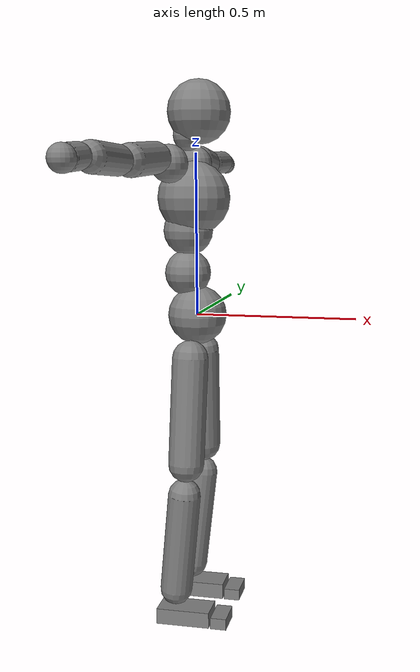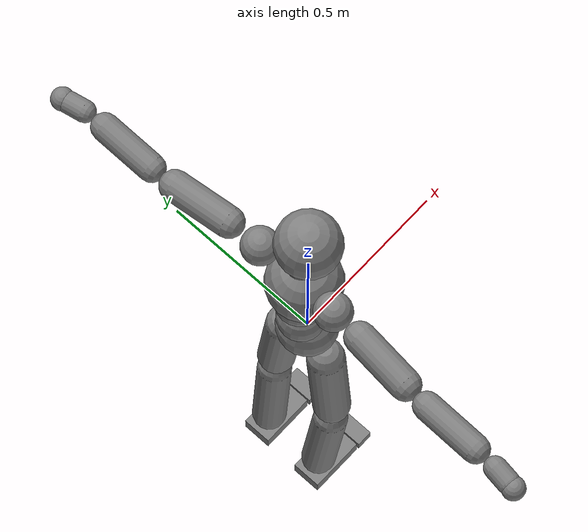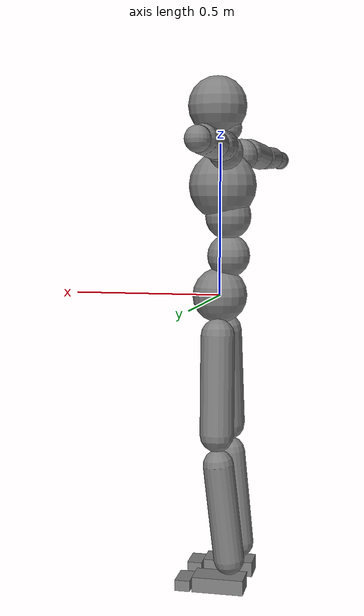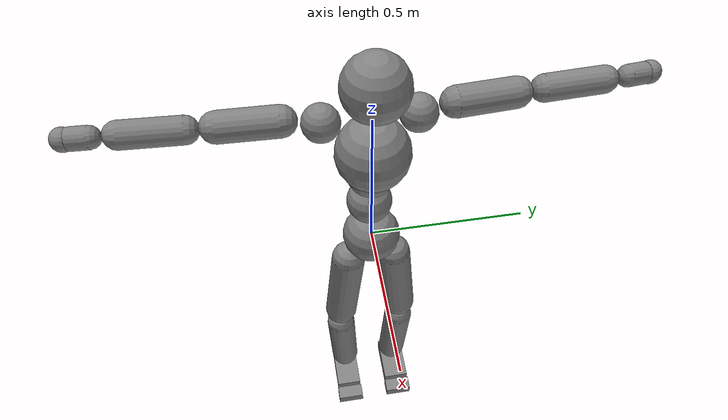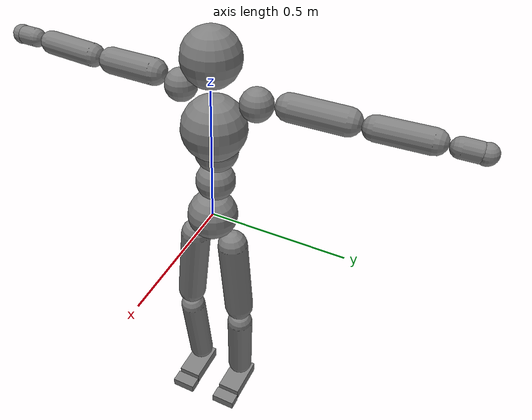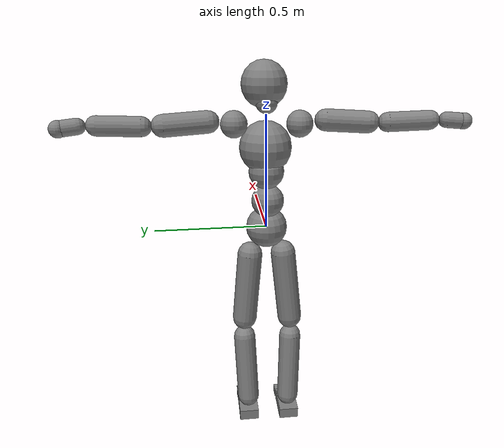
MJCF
<mujoco model="smpl">
  <compiler angle="radian" />
  <default>
    <motor ctrlrange="-1 1" ctrllimited="true" />
    <geom condim="1" friction="1.0 0.05 0.05" solimp=".9 .99 .003" solref=".015 1" />
    <joint limited="true" solimplimit="0 .99 .01" />
    <site size=".04" group="3" />
    <default class="force-torque">
      <site type="box" size=".01 .01 .02" rgba="1 0 0 1" />
    </default>
    <default class="touch">
      <site type="capsule" rgba="0 0 1 .3" />
    </default>
  </default>
  <worldbody>
    <body name="Pelvis" pos="0.000000 0.000000 0.000000">
      <freejoint name="Pelvis" />
      <geom type="sphere" contype="1" conaffinity="1" density="1851.773707" size="0.092340" pos="0.000000 0.000000 0.000000" />
      <body name="L_Hip" pos="-0.007344 0.075060 -0.098712">
        <joint name="L_Hip_x" type="hinge" pos="0 0 0" axis="1 0 0" actuatorfrcrange="-300 300" stiffness="500" damping="50" armature="0.02" range="-0.5236 1.5708" />
        <joint name="L_Hip_y" type="hinge" pos="0 0 0" axis="0 1 0" actuatorfrcrange="-300 300" stiffness="500" damping="50" armature="0.02" range="-2.4435 1.0472" />
        <joint name="L_Hip_z" type="hinge" pos="0 0 0" axis="0 0 1" actuatorfrcrange="-300 300" stiffness="500" damping="50" armature="0.02" range="-0.6109 1.0472" />
        <geom type="capsule" contype="1" conaffinity="1" density="1332.294009" fromto="-0.000340 0.002593 -0.028365 -0.004277 0.032599 -0.356590" size="0.056430" />
        <body name="L_Knee" pos="-0.004860 0.037044 -0.405216">
          <joint name="L_Knee_x" type="hinge" pos="0 0 0" axis="1 0 0" actuatorfrcrange="-200 200" stiffness="500" damping="50" armature="0.02" range="-0.5236 0.5236" />
          <joint name="L_Knee_y" type="hinge" pos="0 0 0" axis="0 1 0" actuatorfrcrange="-200 200" stiffness="500" damping="50" armature="0.02" range="0 2.7925" />
          <joint name="L_Knee_z" type="hinge" pos="0 0 0" axis="0 0 1" actuatorfrcrange="-200 200" stiffness="500" damping="50" armature="0.02" range="-0.5236 0.5236" />
          <geom type="capsule" contype="1" conaffinity="1" density="1109.455027" fromto="-0.005664 -0.001763 -0.051581 -0.041532 -0.012925 -0.378259" size="0.051300" />
          <body name="L_Ankle" pos="-0.047196 -0.014688 -0.429840">
            <joint name="L_Ankle_x" type="hinge" pos="0 0 0" axis="1 0 0" actuatorfrcrange="-100 100" stiffness="400" damping="40" armature="0.02" range="-0.5236 0.5236" />
            <joint name="L_Ankle_y" type="hinge" pos="0 0 0" axis="0 1 0" actuatorfrcrange="-100 100" stiffness="400" damping="40" armature="0.02" range="-0.9599 0.9599" />
            <joint name="L_Ankle_z" type="hinge" pos="0 0 0" axis="0 0 1" actuatorfrcrange="-100 100" stiffness="400" damping="40" armature="0.02" range="-0.6981 0.6981" />
            <geom type="box" contype="1" conaffinity="1" density="879.592511" pos="0.037368 0.002592 -0.030132" size="0.086400 0.046170 0.025650" quat="1.0000 0.0000 0.0000 0.0000" />
            <body name="L_Toe" pos="0.128844 0.013392 -0.027864">
              <joint name="L_Toe_x" type="hinge" pos="0 0 0" axis="1 0 0" actuatorfrcrange="-75 75" stiffness="200" damping="20" armature="0.02" range="-0.5236 0.5236" />
              <joint name="L_Toe_y" type="hinge" pos="0 0 0" axis="0 1 0" actuatorfrcrange="-75 75" stiffness="200" damping="20" armature="0.02" range="-1.0472 1.0472" />
              <joint name="L_Toe_z" type="hinge" pos="0 0 0" axis="0 0 1" actuatorfrcrange="-75 75" stiffness="200" damping="20" armature="0.02" range="-0.5236 0.5236" />
              <geom type="box" contype="1" conaffinity="1" density="879.592511" pos="0.027216 -0.010800 -0.008640" size="0.025650 0.048600 0.018468" quat="1.0000 0.0000 0.0000 0.0000" />
            </body>
          </body>
        </body>
      </body>
      <body name="R_Hip" pos="-0.004644 -0.073116 -0.097740">
        <joint name="R_Hip_x" type="hinge" pos="0 0 0" axis="1 0 0" actuatorfrcrange="-300 300" stiffness="500" damping="50" armature="0.02" range="-1.5708 0.5236" />
        <joint name="R_Hip_y" type="hinge" pos="0 0 0" axis="0 1 0" actuatorfrcrange="-300 300" stiffness="500" damping="50" armature="0.02" range="-2.4435 1.0472" />
        <joint name="R_Hip_z" type="hinge" pos="0 0 0" axis="0 0 1" actuatorfrcrange="-300 300" stiffness="500" damping="50" armature="0.02" range="-1.0472 0.6109" />
        <geom type="capsule" contype="1" conaffinity="1" density="1332.079468" fromto="-0.000673 -0.002895 -0.028925 -0.008459 -0.036400 -0.363623" size="0.056430" />
        <body name="R_Knee" pos="-0.009612 -0.041364 -0.413208">
          <joint name="R_Knee_x" type="hinge" pos="0 0 0" axis="1 0 0" actuatorfrcrange="-200 200" stiffness="500" damping="50" armature="0.02" range="-0.5236 0.5236" />
          <joint name="R_Knee_y" type="hinge" pos="0 0 0" axis="0 1 0" actuatorfrcrange="-200 200" stiffness="500" damping="50" armature="0.02" range="0 2.7925" />
          <joint name="R_Knee_z" type="hinge" pos="0 0 0" axis="0 0 1" actuatorfrcrange="-200 200" stiffness="500" damping="50" armature="0.02" range="-0.5236 0.5236" />
          <geom type="capsule" contype="1" conaffinity="1" density="1109.448281" fromto="-0.005482 0.002048 -0.051633 -0.040202 0.015016 -0.378639" size="0.051300" />
          <body name="R_Ankle" pos="-0.045684 0.017064 -0.430272">
            <joint name="R_Ankle_x" type="hinge" pos="0 0 0" axis="1 0 0" actuatorfrcrange="-100 100" stiffness="400" damping="40" armature="0.02" range="-0.5236 0.5236" />
            <joint name="R_Ankle_y" type="hinge" pos="0 0 0" axis="0 1 0" actuatorfrcrange="-100 100" stiffness="400" damping="40" armature="0.02" range="-0.9599 0.9599" />
            <joint name="R_Ankle_z" type="hinge" pos="0 0 0" axis="0 0 1" actuatorfrcrange="-100 100" stiffness="400" damping="40" armature="0.02" range="-0.6981 0.6981" />
            <geom type="box" contype="1" conaffinity="1" density="879.592511" pos="0.037368 -0.002592 -0.030132" size="0.086400 0.046170 0.025650" quat="1.0000 0.0000 0.0000 0.0000" />
            <body name="R_Toe" pos="0.128844 -0.013392 -0.027864">
              <joint name="R_Toe_x" type="hinge" pos="0 0 0" axis="1 0 0" actuatorfrcrange="-75 75" stiffness="200" damping="20" armature="0.02" range="-0.5236 0.5236" />
              <joint name="R_Toe_y" type="hinge" pos="0 0 0" axis="0 1 0" actuatorfrcrange="-75 75" stiffness="200" damping="20" armature="0.02" range="-1.0472 1.0472" />
              <joint name="R_Toe_z" type="hinge" pos="0 0 0" axis="0 0 1" actuatorfrcrange="-75 75" stiffness="200" damping="20" armature="0.02" range="-0.5236 0.5236" />
              <geom type="box" contype="1" conaffinity="1" density="879.592511" pos="0.027216 0.010800 -0.008640" size="0.025650 0.048600 0.018468" quat="1.0000 0.0000 0.0000 0.0000" />
            </body>
          </body>
        </body>
      </body>
      <body name="Torso" pos="-0.028836 -0.002700 0.117720">
        <joint name="Torso_x" type="hinge" pos="0 0 0" axis="1 0 0" actuatorfrcrange="-300 300" stiffness="1000" damping="100" armature="0.02" range="-1.0472 1.0472" />
        <joint name="Torso_y" type="hinge" pos="0 0 0" axis="0 1 0" actuatorfrcrange="-300 300" stiffness="1000" damping="100" armature="0.02" range="-1.0472 1.5708" />
        <joint name="Torso_z" type="hinge" pos="0 0 0" axis="0 0 1" actuatorfrcrange="-300 300" stiffness="1000" damping="100" armature="0.02" range="-0.8727 0.8727" />
        <geom type="sphere" contype="1" conaffinity="1" density="1851.773707" size="0.071820" pos="0.000119 0.000594 0.014602" />
        <body name="Spine" pos="0.001188 0.005940 0.146016">
          <joint name="Spine_x" type="hinge" pos="0 0 0" axis="1 0 0" actuatorfrcrange="-200 200" stiffness="1000" damping="100" armature="0.02" range="-1.0472 1.0472" />
          <joint name="Spine_y" type="hinge" pos="0 0 0" axis="0 1 0" actuatorfrcrange="-200 200" stiffness="1000" damping="100" armature="0.02" range="-1.0472 1.5708" />
          <joint name="Spine_z" type="hinge" pos="0 0 0" axis="0 0 1" actuatorfrcrange="-200 200" stiffness="1000" damping="100" armature="0.02" range="-0.8727 0.8727" />
          <geom type="sphere" contype="1" conaffinity="1" density="1851.773707" size="0.076950" pos="0.000000 0.000000 0.000000" />
          <body name="Chest" pos="0.027432 0.001620 0.057132">
            <joint name="Chest_x" type="hinge" pos="0 0 0" axis="1 0 0" actuatorfrcrange="-150 150" stiffness="1000" damping="100" armature="0.02" range="-1.0472 1.0472" />
            <joint name="Chest_y" type="hinge" pos="0 0 0" axis="0 1 0" actuatorfrcrange="-150 150" stiffness="1000" damping="100" armature="0.02" range="-1.0472 1.5708" />
            <joint name="Chest_z" type="hinge" pos="0 0 0" axis="0 0 1" actuatorfrcrange="-150 150" stiffness="1000" damping="100" armature="0.02" range="-0.8727 0.8727" />
            <geom type="sphere" contype="1" conaffinity="1" density="1851.773707" size="0.112860" pos="-0.008640 0.000000 0.043200" />
            <body name="Neck" pos="-0.046332 -0.003024 0.231012">
              <joint name="Neck_x" type="hinge" pos="0 0 0" axis="1 0 0" actuatorfrcrange="-75 75" stiffness="500" damping="50" armature="0.02" range="-0.8727 0.8727" />
              <joint name="Neck_y" type="hinge" pos="0 0 0" axis="0 1 0" actuatorfrcrange="-75 75" stiffness="500" damping="50" armature="0.02" range="-0.6981 1.0472" />
              <joint name="Neck_z" type="hinge" pos="0 0 0" axis="0 0 1" actuatorfrcrange="-75 75" stiffness="500" damping="50" armature="0.02" range="-0.7854 0.7854" />
              <geom type="sphere" contype="1" conaffinity="1" density="925.886854" size="0.046170" pos="0.021600 0.000000 0.000000" />
              <body name="Head" pos="0.055404 0.005616 0.070200">
                <joint name="Head_x" type="hinge" pos="0 0 0" axis="1 0 0" actuatorfrcrange="-25 25" stiffness="200" damping="20" armature="0.02" range="-0.8727 0.8727" />
                <joint name="Head_y" type="hinge" pos="0 0 0" axis="0 1 0" actuatorfrcrange="-25 25" stiffness="200" damping="20" armature="0.02" range="-0.6981 1.0472" />
                <joint name="Head_z" type="hinge" pos="0 0 0" axis="0 0 1" actuatorfrcrange="-25 25" stiffness="200" damping="20" armature="0.02" range="-0.7854 0.7854" />
                <geom type="sphere" contype="1" conaffinity="1" density="925.886854" size="0.097470" pos="0.000000 0.000000 0.000000" />
              </body>
            </body>
            <body name="L_Thorax" pos="-0.036828 0.085104 0.131436">
              <joint name="L_Thorax_x" type="hinge" pos="0 0 0" axis="1 0 0" actuatorfrcrange="-200 200" stiffness="500" damping="50" armature="0.02" range="-0.6981 0.5236" />
              <joint name="L_Thorax_y" type="hinge" pos="0 0 0" axis="0 1 0" actuatorfrcrange="-200 200" stiffness="500" damping="50" armature="0.02" range="-0.5236 0.5236" />
              <joint name="L_Thorax_z" type="hinge" pos="0 0 0" axis="0 0 1" actuatorfrcrange="-200 200" stiffness="500" damping="50" armature="0.02" range="-0.5236 0.5236" />
              <geom type="sphere" contype="1" conaffinity="1" density="925.886854" size="0.056430" pos="-0.004806 0.049140 0.016470" />
              <body name="L_Shoulder" pos="-0.009612 0.098280 0.032940">
                <joint name="L_Shoulder_x" type="hinge" pos="0 0 0" axis="1 0 0" actuatorfrcrange="-150 150" stiffness="400" damping="40" armature="0.02" range="-2.3562 1.5708" />
                <joint name="L_Shoulder_y" type="hinge" pos="0 0 0" axis="0 1 0" actuatorfrcrange="-150 150" stiffness="400" damping="40" armature="0.02" range="-1.5708 1.5708" />
                <joint name="L_Shoulder_z" type="hinge" pos="0 0 0" axis="0 0 1" actuatorfrcrange="-150 150" stiffness="400" damping="40" armature="0.02" range="-2.7925 1.0472" />
                <geom type="capsule" contype="1" conaffinity="1" density="891.222821" fromto="-0.005940 0.056074 -0.002765 -0.025245 0.238313 -0.011750" size="0.046170" />
                <body name="L_Elbow" pos="-0.029700 0.280368 -0.013824">
                  <joint name="L_Elbow_x" type="hinge" pos="0 0 0" axis="1 0 0" actuatorfrcrange="-100 100" stiffness="300" damping="30" armature="0.02" range="-0.5236 0.5236" />
                  <joint name="L_Elbow_y" type="hinge" pos="0 0 0" axis="0 1 0" actuatorfrcrange="-100 100" stiffness="300" damping="30" armature="0.02" range="-0.5236 0.5236" />
                  <joint name="L_Elbow_z" type="hinge" pos="0 0 0" axis="0 0 1" actuatorfrcrange="-100 100" stiffness="300" damping="30" armature="0.02" range="-2.7925 0" />
                  <geom type="capsule" contype="1" conaffinity="1" density="890.615292" fromto="-0.000194 0.040370 0.001458 -0.000972 0.215352 0.007776" size="0.041040" />
                  <body name="L_Wrist" pos="-0.001296 0.269136 0.009720">
                    <joint name="L_Wrist_x" type="hinge" pos="0 0 0" axis="1 0 0" actuatorfrcrange="-75 75" stiffness="200" damping="20" armature="0.02" range="-1.5708 1.5708" />
                    <joint name="L_Wrist_y" type="hinge" pos="0 0 0" axis="0 1 0" actuatorfrcrange="-75 75" stiffness="200" damping="20" armature="0.02" range="-1.5708 1.5708" />
                    <joint name="L_Wrist_z" type="hinge" pos="0 0 0" axis="0 0 1" actuatorfrcrange="-75 75" stiffness="200" damping="20" armature="0.02" range="-1.0472 1.0472" />
                    <geom type="capsule" contype="1" conaffinity="1" density="899.925205" fromto="-0.003240 0.018144 -0.001728 -0.012960 0.072576 -0.007020" size="0.032627" />
                    <body name="L_Hand" pos="-0.016092 0.090720 -0.008856">
                      <joint name="L_Hand_x" type="hinge" pos="0 0 0" axis="1 0 0" actuatorfrcrange="-50 50" stiffness="100" damping="10" armature="0.02" range="-1.5708 1.5708" />
                      <joint name="L_Hand_y" type="hinge" pos="0 0 0" axis="0 1 0" actuatorfrcrange="-50 50" stiffness="100" damping="10" armature="0.02" range="-1.5708 1.5708" />
                      <joint name="L_Hand_z" type="hinge" pos="0 0 0" axis="0 0 1" actuatorfrcrange="-50 50" stiffness="100" damping="10" armature="0.02" range="-1.5708 1.5708" />
                      <geom type="sphere" contype="1" conaffinity="1" density="925.886854" size="0.034576" pos="0.000000 0.000000 0.000000" />
                    </body>
                  </body>
                </body>
              </body>
            </body>
            <body name="R_Thorax" pos="-0.041688 -0.088344 0.128304">
              <joint name="R_Thorax_x" type="hinge" pos="0 0 0" axis="1 0 0" actuatorfrcrange="-200 200" stiffness="500" damping="50" armature="0.02" range="-0.5236 0.6981" />
              <joint name="R_Thorax_y" type="hinge" pos="0 0 0" axis="0 1 0" actuatorfrcrange="-200 200" stiffness="500" damping="50" armature="0.02" range="-0.5236 0.5236" />
              <joint name="R_Thorax_z" type="hinge" pos="0 0 0" axis="0 0 1" actuatorfrcrange="-200 200" stiffness="500" damping="50" armature="0.02" range="-0.5236 0.5236" />
              <geom type="sphere" contype="1" conaffinity="1" density="925.886854" size="0.056430" pos="-0.004914 -0.051840 0.017604" />
              <body name="R_Shoulder" pos="-0.009828 -0.103680 0.035208">
                <joint name="R_Shoulder_x" type="hinge" pos="0 0 0" axis="1 0 0" actuatorfrcrange="-150 150" stiffness="400" damping="40" armature="0.02" range="-1.5708 2.3562" />
                <joint name="R_Shoulder_y" type="hinge" pos="0 0 0" axis="0 1 0" actuatorfrcrange="-150 150" stiffness="400" damping="40" armature="0.02" range="-1.5708 1.5708" />
                <joint name="R_Shoulder_z" type="hinge" pos="0 0 0" axis="0 0 1" actuatorfrcrange="-150 150" stiffness="400" damping="40" armature="0.02" range="-1.0472 2.7925" />
                <geom type="capsule" contype="1" conaffinity="1" density="891.440669" fromto="-0.004622 -0.054799 -0.002873 -0.019645 -0.232897 -0.012209" size="0.046170" />
                <body name="R_Elbow" pos="-0.023112 -0.273996 -0.014364">
                  <joint name="R_Elbow_x" type="hinge" pos="0 0 0" axis="1 0 0" actuatorfrcrange="-100 100" stiffness="300" damping="30" armature="0.02" range="-0.5236 0.5236" />
                  <joint name="R_Elbow_y" type="hinge" pos="0 0 0" axis="0 1 0" actuatorfrcrange="-100 100" stiffness="300" damping="30" armature="0.02" range="-0.5236 0.5236" />
                  <joint name="R_Elbow_z" type="hinge" pos="0 0 0" axis="0 0 1" actuatorfrcrange="-100 100" stiffness="300" damping="30" armature="0.02" range="0 2.7925" />
                  <geom type="capsule" contype="1" conaffinity="1" density="890.415151" fromto="-0.000907 -0.041359 0.001264 -0.004838 -0.220579 0.006739" size="0.041040" />
                  <body name="R_Wrist" pos="-0.006048 -0.275724 0.008424">
                    <joint name="R_Wrist_x" type="hinge" pos="0 0 0" axis="1 0 0" actuatorfrcrange="-75 75" stiffness="200" damping="20" armature="0.02" range="-1.5708 1.5708" />
                    <joint name="R_Wrist_y" type="hinge" pos="0 0 0" axis="0 1 0" actuatorfrcrange="-75 75" stiffness="200" damping="20" armature="0.02" range="-1.5708 1.5708" />
                    <joint name="R_Wrist_z" type="hinge" pos="0 0 0" axis="0 0 1" actuatorfrcrange="-75 75" stiffness="200" damping="20" armature="0.02" range="-1.0472 1.0472" />
                    <geom type="capsule" contype="1" conaffinity="1" density="900.235795" fromto="-0.002268 -0.018252 -0.001296 -0.008964 -0.073116 -0.005292" size="0.033448" />
                    <body name="R_Hand" pos="-0.011124 -0.091368 -0.006588">
                      <joint name="R_Hand_x" type="hinge" pos="0 0 0" axis="1 0 0" actuatorfrcrange="-50 50" stiffness="100" damping="10" armature="0.02" range="-1.5708 1.5708" />
                      <joint name="R_Hand_y" type="hinge" pos="0 0 0" axis="0 1 0" actuatorfrcrange="-50 50" stiffness="100" damping="10" armature="0.02" range="-1.5708 1.5708" />
                      <joint name="R_Hand_z" type="hinge" pos="0 0 0" axis="0 0 1" actuatorfrcrange="-50 50" stiffness="100" damping="10" armature="0.02" range="-1.5708 1.5708" />
                      <geom type="sphere" contype="1" conaffinity="1" density="925.886854" size="0.034884" pos="0.000000 0.000000 0.000000" />
                    </body>
                  </body>
                </body>
              </body>
            </body>
          </body>
        </body>
      </body>
    </body>
  </worldbody>
  <actuator>
    <motor name="L_Hip_x" joint="L_Hip_x" gear="300" />
    <motor name="L_Hip_y" joint="L_Hip_y" gear="300" />
    <motor name="L_Hip_z" joint="L_Hip_z" gear="300" />
    <motor name="L_Knee_x" joint="L_Knee_x" gear="200" />
    <motor name="L_Knee_y" joint="L_Knee_y" gear="200" />
    <motor name="L_Knee_z" joint="L_Knee_z" gear="200" />
    <motor name="L_Ankle_x" joint="L_Ankle_x" gear="100" />
    <motor name="L_Ankle_y" joint="L_Ankle_y" gear="100" />
    <motor name="L_Ankle_z" joint="L_Ankle_z" gear="100" />
    <motor name="L_Toe_x" joint="L_Toe_x" gear="75" />
    <motor name="L_Toe_y" joint="L_Toe_y" gear="75" />
    <motor name="L_Toe_z" joint="L_Toe_z" gear="75" />
    <motor name="R_Hip_x" joint="R_Hip_x" gear="300" />
    <motor name="R_Hip_y" joint="R_Hip_y" gear="300" />
    <motor name="R_Hip_z" joint="R_Hip_z" gear="300" />
    <motor name="R_Knee_x" joint="R_Knee_x" gear="200" />
    <motor name="R_Knee_y" joint="R_Knee_y" gear="200" />
    <motor name="R_Knee_z" joint="R_Knee_z" gear="200" />
    <motor name="R_Ankle_x" joint="R_Ankle_x" gear="100" />
    <motor name="R_Ankle_y" joint="R_Ankle_y" gear="100" />
    <motor name="R_Ankle_z" joint="R_Ankle_z" gear="100" />
    <motor name="R_Toe_x" joint="R_Toe_x" gear="75" />
    <motor name="R_Toe_y" joint="R_Toe_y" gear="75" />
    <motor name="R_Toe_z" joint="R_Toe_z" gear="75" />
    <motor name="Torso_x" joint="Torso_x" gear="300" />
    <motor name="Torso_y" joint="Torso_y" gear="300" />
    <motor name="Torso_z" joint="Torso_z" gear="300" />
    <motor name="Spine_x" joint="Spine_x" gear="200" />
    <motor name="Spine_y" joint="Spine_y" gear="200" />
    <motor name="Spine_z" joint="Spine_z" gear="200" />
    <motor name="Chest_x" joint="Chest_x" gear="150" />
    <motor name="Chest_y" joint="Chest_y" gear="150" />
    <motor name="Chest_z" joint="Chest_z" gear="150" />
    <motor name="Neck_x" joint="Neck_x" gear="75" />
    <motor name="Neck_y" joint="Neck_y" gear="75" />
    <motor name="Neck_z" joint="Neck_z" gear="75" />
    <motor name="Head_x" joint="Head_x" gear="25" />
    <motor name="Head_y" joint="Head_y" gear="25" />
    <motor name="Head_z" joint="Head_z" gear="25" />
    <motor name="L_Thorax_x" joint="L_Thorax_x" gear="200" />
    <motor name="L_Thorax_y" joint="L_Thorax_y" gear="200" />
    <motor name="L_Thorax_z" joint="L_Thorax_z" gear="200" />
    <motor name="L_Shoulder_x" joint="L_Shoulder_x" gear="150" />
    <motor name="L_Shoulder_y" joint="L_Shoulder_y" gear="150" />
    <motor name="L_Shoulder_z" joint="L_Shoulder_z" gear="150" />
    <motor name="L_Elbow_x" joint="L_Elbow_x" gear="100" />
    <motor name="L_Elbow_y" joint="L_Elbow_y" gear="100" />
    <motor name="L_Elbow_z" joint="L_Elbow_z" gear="100" />
    <motor name="L_Wrist_x" joint="L_Wrist_x" gear="75" />
    <motor name="L_Wrist_y" joint="L_Wrist_y" gear="75" />
    <motor name="L_Wrist_z" joint="L_Wrist_z" gear="75" />
    <motor name="L_Hand_x" joint="L_Hand_x" gear="50" />
    <motor name="L_Hand_y" joint="L_Hand_y" gear="50" />
    <motor name="L_Hand_z" joint="L_Hand_z" gear="50" />
    <motor name="R_Thorax_x" joint="R_Thorax_x" gear="200" />
    <motor name="R_Thorax_y" joint="R_Thorax_y" gear="200" />
    <motor name="R_Thorax_z" joint="R_Thorax_z" gear="200" />
    <motor name="R_Shoulder_x" joint="R_Shoulder_x" gear="150" />
    <motor name="R_Shoulder_y" joint="R_Shoulder_y" gear="150" />
    <motor name="R_Shoulder_z" joint="R_Shoulder_z" gear="150" />
    <motor name="R_Elbow_x" joint="R_Elbow_x" gear="100" />
    <motor name="R_Elbow_y" joint="R_Elbow_y" gear="100" />
    <motor name="R_Elbow_z" joint="R_Elbow_z" gear="100" />
    <motor name="R_Wrist_x" joint="R_Wrist_x" gear="75" />
    <motor name="R_Wrist_y" joint="R_Wrist_y" gear="75" />
    <motor name="R_Wrist_z" joint="R_Wrist_z" gear="75" />
    <motor name="R_Hand_x" joint="R_Hand_x" gear="50" />
    <motor name="R_Hand_y" joint="R_Hand_y" gear="50" />
    <motor name="R_Hand_z" joint="R_Hand_z" gear="50" />
  </actuator>
</mujoco>
